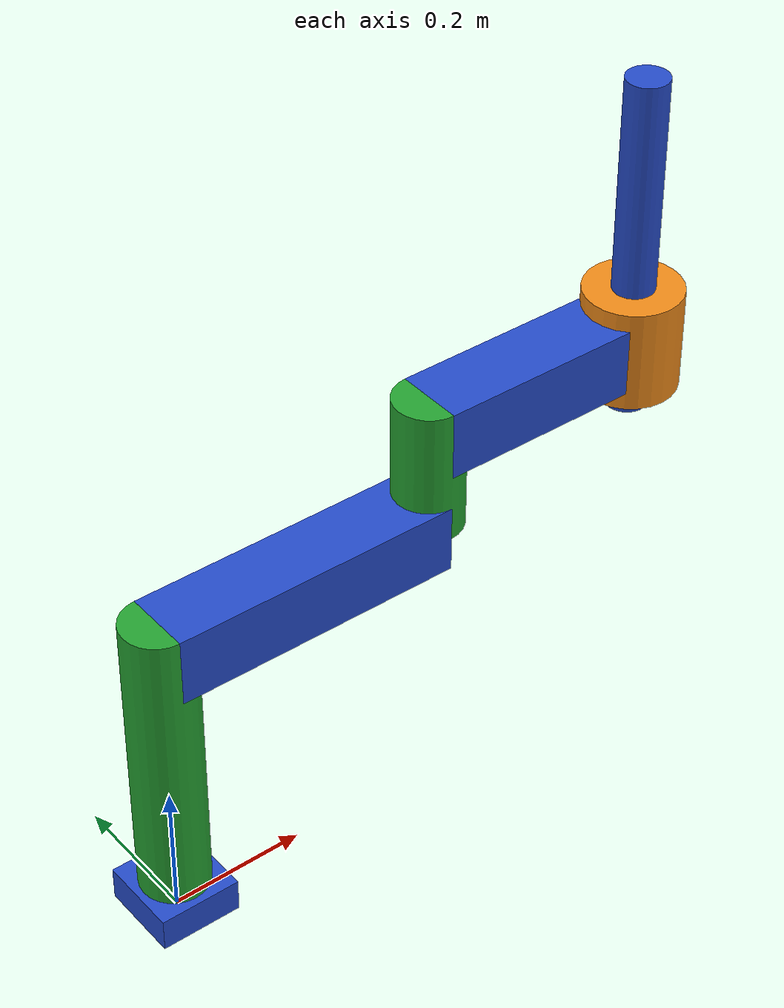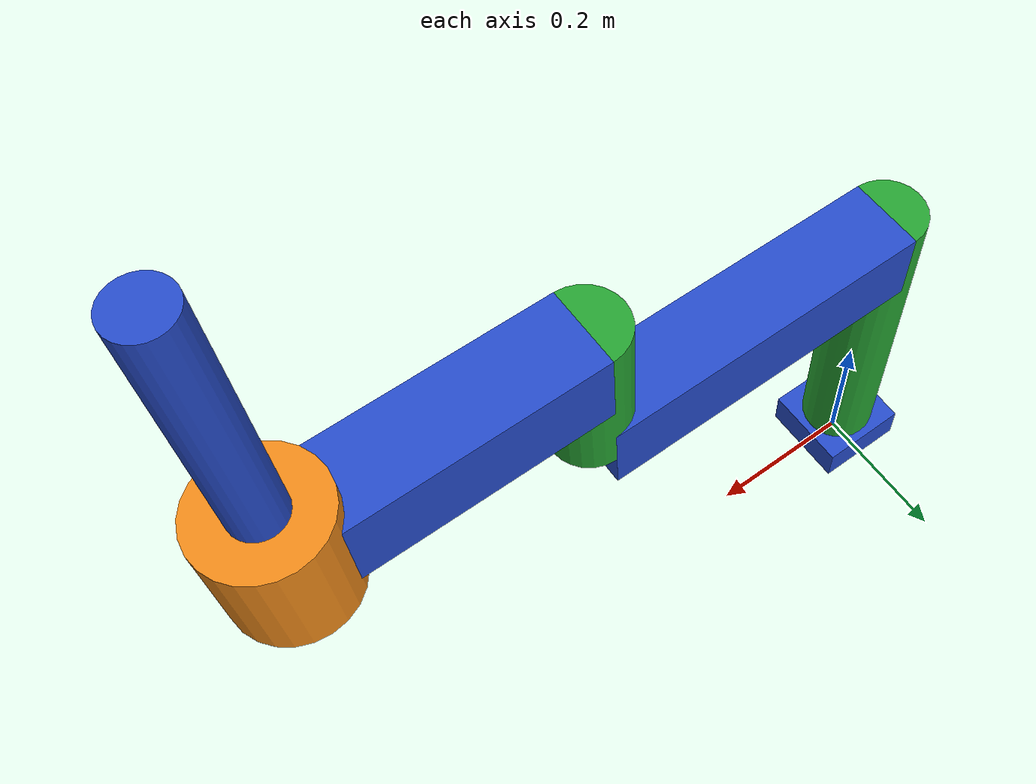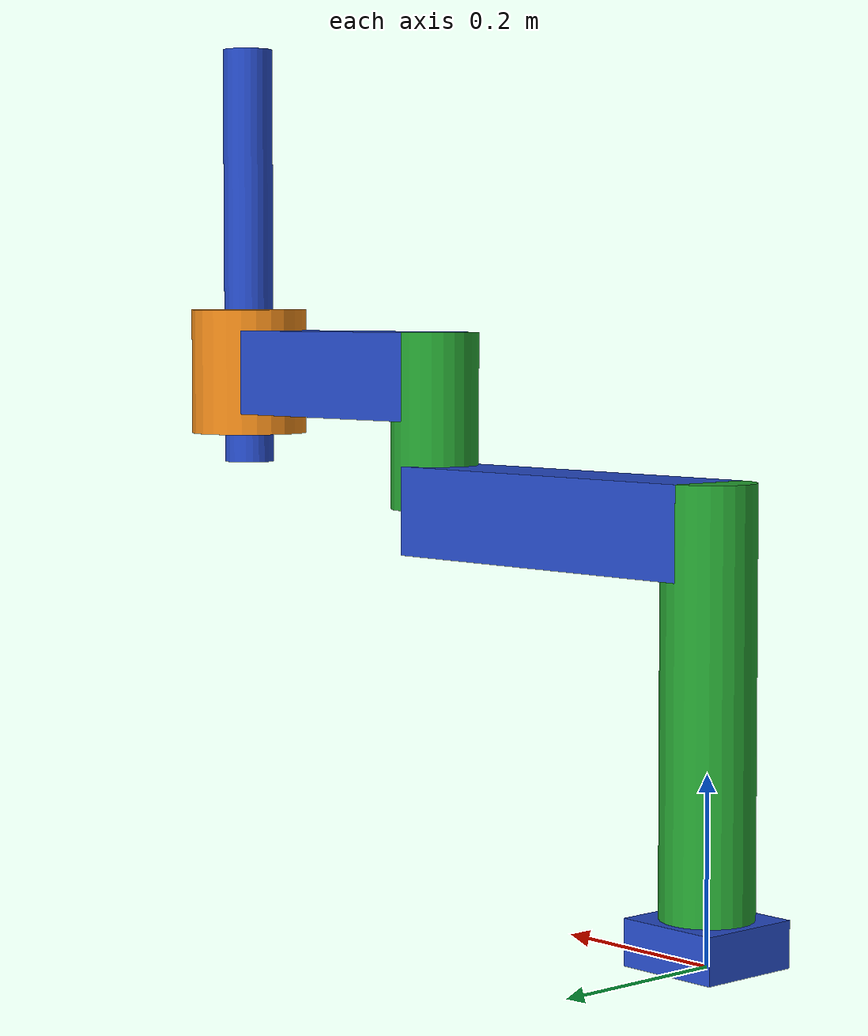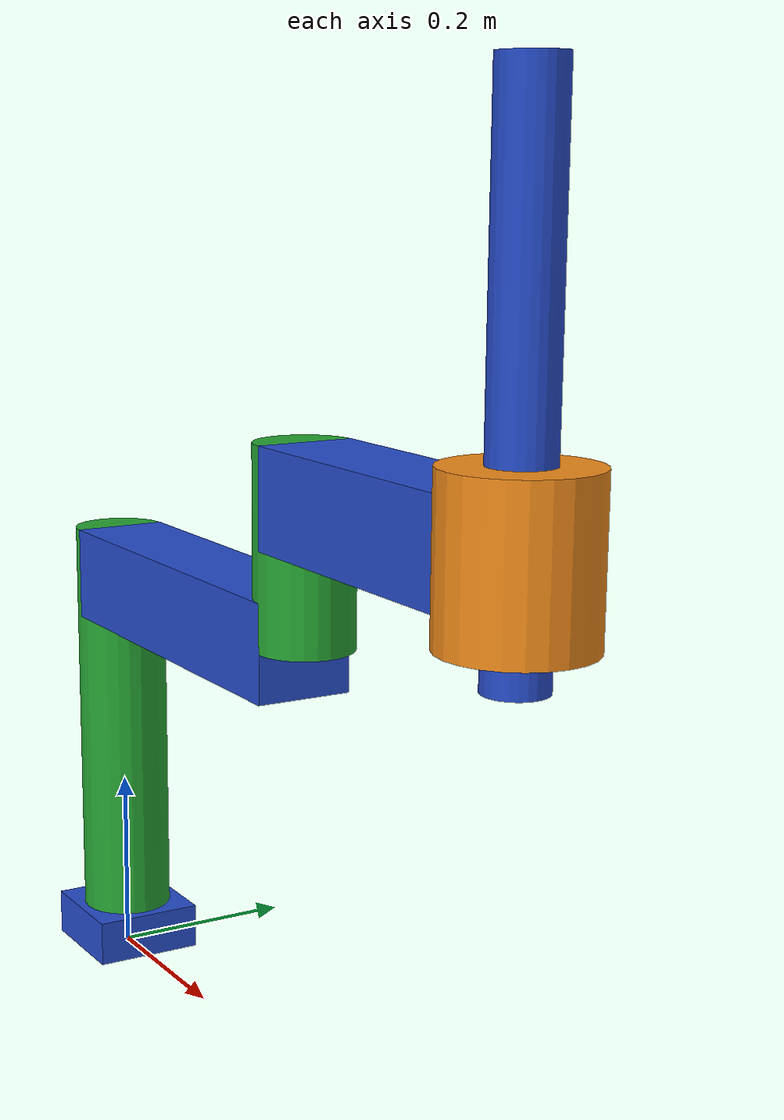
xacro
<?xml version="1.0"?>
<robot name="scara" xmlns:xacro="http://www.ros.org/wiki/xacro">

  <!-- Used for fixing robot to 'base_link' -->
  <link name="world" />

  <!-- Base Link -->
  <link name="base_link">
    <visual>
      <geometry>
        <box size="0.12 0.12 0.05" />
      </geometry>
      <material name="blue" />
      <origin xyz="0 0 0.025" />
    </visual>
    <inertial>
      <mass value="1" />
      <origin xyz="0 0 0.025" rpy="0 0 0" />
      <inertia ixx="1" ixy="0" ixz="0" iyy="1" iyz="0" izz="1" />
    </inertial>
    <collision>
      <geometry>
        <box size="0.12 0.12 0.05" />
      </geometry>
      <material name="blue" />
      <origin xyz="0 0 0.025" />
    </collision>
  </link>

  <joint name="base2world" type="fixed">
    <parent link="world" />
    <child link="base_link" />
  </joint>

  <!-- revolute1 1 -->
  <link name="revolute1">
    <visual>
      <geometry>
        <cylinder length="0.45" radius="0.05" />
      </geometry>
      <material name="green" />
      <origin xyz="0 0 0.225" />
    </visual>
    <inertial>
      <mass value="0.5" />
      <origin xyz="0 0 0.05" rpy="0 0 0" />
      <inertia ixx="0.5" ixy="0" ixz="0" iyy="0.5" iyz="0" izz="0.5" />
    </inertial>
    <collision>
      <geometry>
        <cylinder length="0.45" radius="0.05" />
      </geometry>
      <material name="green" />
      <origin xyz="0 0 0.225" />
    </collision>
  </link>

  <joint name="joint1" type="revolute">
    <parent link="base_link" />
    <child link="revolute1" />
    <origin xyz="0 0 0.05" />
    <limit effort="1000.0" lower="-1.57" upper="1.57" velocity="0.5" />
    <axis xyz="0 0 1" />
    <dynamics damping="0.2" friction="0.1" />
  </joint>

  <!-- link 1 -->
  <link name="link1">
    <visual>
      <geometry>
        <box size="0.1 0.1 0.425" />
      </geometry>
      <material name="blue" />
      <origin rpy="0 1.571 0" xyz="0.2125 0 0" />
    </visual>
    <inertial>
      <mass value="0.5" />
      <origin xyz="0.2125 0 0" rpy="0 0 0" />
      <inertia ixx="0.5" ixy="0" ixz="0" iyy="0.5" iyz="0" izz="0.5" />
    </inertial>
    <collision>
      <geometry>
        <box size="0.1 0.1 0.425" />
      </geometry>
      <material name="blue" />
      <origin rpy="0 1.571 0" xyz="0.2125 0 0" />
    </collision>
  </link>

  <joint name="link12revolute1" type="fixed">
    <parent link="revolute1" />
    <child link="link1" />
    <origin xyz="0 0 0.4" />
  </joint>

  <!-- revolute 2 -->
  <link name="revolute2">
    <visual>
      <geometry>
        <cylinder length="0.2" radius="0.05" />
      </geometry>
      <material name="green" />
      <origin rpy="0 0 0" xyz="0 0 0" />
    </visual>
    <inertial>
      <mass value="0.5" />
      <origin xyz="0 0 0" rpy="0 0 0" />
      <inertia ixx="0.5" ixy="0" ixz="0" iyy="0.5" iyz="0" izz="0.5" />
    </inertial>
    <collision>
      <geometry>
        <cylinder length="0.2" radius="0.05" />
      </geometry>
      <material name="green" />
      <origin rpy="0 0 0" xyz="0 0 0" />
    </collision>
  </link>

  <joint name="joint2" type="revolute">
    <parent link="link1" />
    <child link="revolute2" />
    <origin xyz="0.425 0 0.1" />
    <limit effort="1000.0" lower="-1.57" upper="1.57" velocity="0.5" />
    <axis xyz="0 0 1" />
    <dynamics damping="0.2" friction="0.1" />
  </joint>

  <!-- link 2 -->
  <link name="link2">
    <visual>
      <geometry>
        <box size="0.1 0.1 0.345" />
      </geometry>
      <material name="blue" />
      <origin rpy="0 1.571 0" xyz="0.1725 0 0" />
    </visual>
    <inertial>
      <mass value="0.5" />
      <origin xyz="0.1725 0 0" rpy="0 0 0" />
      <inertia ixx="0.5" ixy="0" ixz="0" iyy="0.5" iyz="0" izz="0.5" />
    </inertial>
    <collision>
      <geometry>
        <box size="0.1 0.1 0.345" />
      </geometry>
      <material name="blue" />
      <origin rpy="0 1.571 0" xyz="0.1725 0 0" />
    </collision>
  </link>

  <joint name="link22revolute2" type="fixed">
    <parent link="revolute2" />
    <child link="link2" />
    <origin xyz="0 0 0.05" />
  </joint>

  <!-- prismatic 3 -->
  <link name="prismatic3">
    <visual>
      <geometry>
        <cylinder length="0.15" radius="0.07" />
      </geometry>
      <material name="orange" />
      <origin xyz="0 0 0" />
    </visual>
    <inertial>
      <mass value="0.5" />
      <origin xyz="0 0 0" rpy="0 0 0" />
      <inertia ixx="0.5" ixy="0" ixz="0" iyy="0.5" iyz="0" izz="0.5" />
    </inertial>
    <collision>
      <geometry>
        <cylinder length="0.15" radius="0.07" />
      </geometry>
      <material name="orange" />
      <origin xyz="0 0 0" />
    </collision>
  </link>

  <joint name="prismatic32link2" type="fixed">
    <parent link="link2" />
    <child link="prismatic3" />
    <origin rpy="3.14 0 0" xyz="0.345 0 0" />
  </joint>

  <!-- link 3 -->
  <link name="link3">
    <visual>
      <geometry>
        <cylinder length="0.5" radius="0.03" />
      </geometry>
      <material name="blue" />
      <origin xyz="0 0 -0.25" />
    </visual>
    <inertial>
      <mass value="0.2" />
      <origin xyz="0 0 -0.25" rpy="0 0 0" />
      <inertia ixx="0.2" ixy="0" ixz="0" iyy="0.2" iyz="0" izz="0.2" />
    </inertial>
    <collision>
      <geometry>
        <cylinder length="0.5" radius="0.03" />
      </geometry>
      <material name="blue" />
      <origin xyz="0 0 -0.25" />
    </collision>
  </link>

  <joint name="joint3" type="prismatic">
    <parent link="prismatic3" />
    <child link="link3" />
    <origin xyz="0 0 0.11" />
    <limit effort="1000" lower="-0.00001" upper="0.3" velocity="0.1" />
    <axis xyz="0 0 1" />
    <dynamics damping="0.4" friction="5" />
  </joint>

  <link name="tool0" />

  <joint name="tool02link3" type="fixed">
    <origin rpy="0 0 0" xyz="0 0 0" />
    <parent link="link3" />
    <child link="tool0" />
    <axis xyz="0 0 0" />
  </joint>

</robot>
